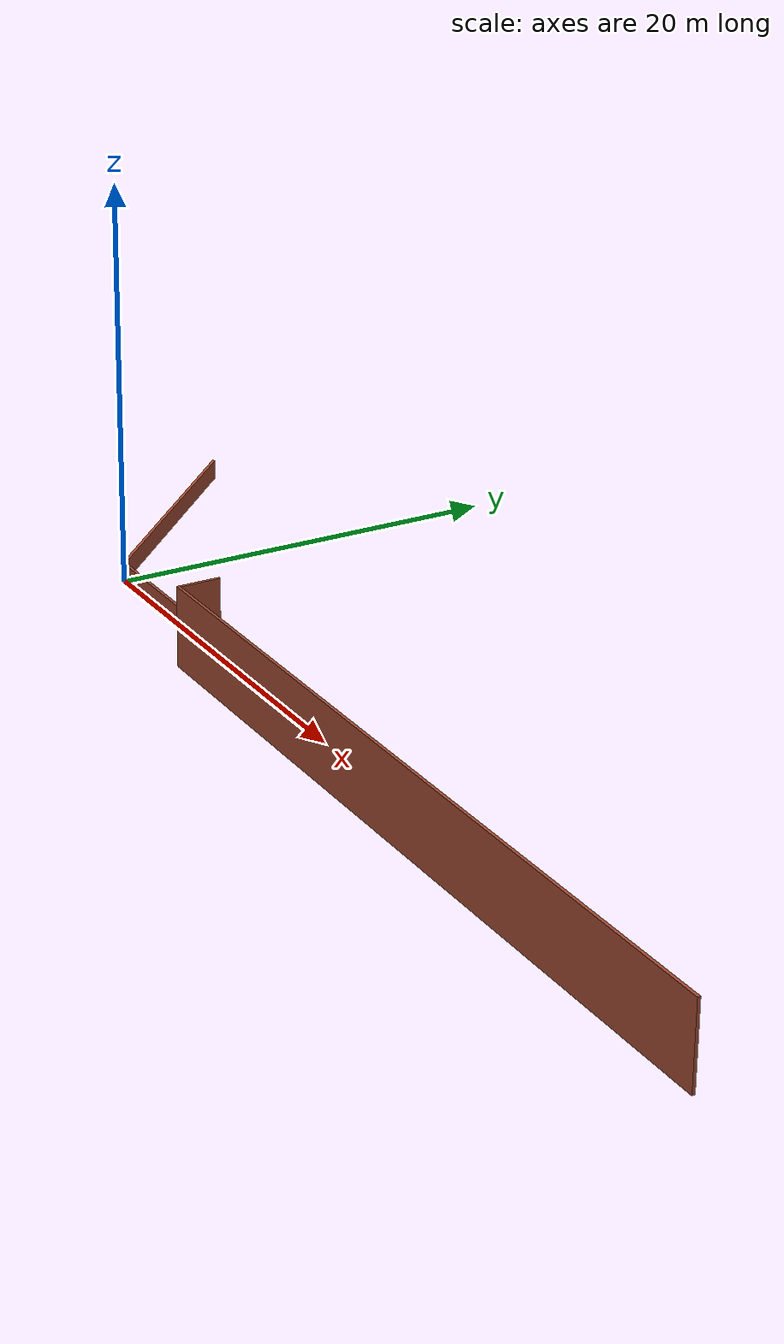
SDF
<?xml version='1.0'?>
<sdf version='1.6'>
  <model name='wall_others_2'>
    <pose frame=''>19.9845 4.01553 0 0 -0 0</pose>
    <link name='Wall_23'>
      <collision name='Wall_23_Collision'>
        <geometry>
          <box>
            <size>14.2921 0.15 1</size>
          </box>
        </geometry>
        <pose frame=''>0 0 0.5 0 -0 0</pose>
      </collision>
      <visual name='Wall_23_Visual'>
        <pose frame=''>0 0 0.5 0 -0 0</pose>
        <geometry>
          <box>
            <size>14.2921 0.15 1</size>
          </box>
        </geometry>
        <material>
          <script>
            <uri>file://media/materials/scripts/gazebo.material</uri>
            <name>Gazebo/Bricks</name>
          </script>
          <ambient>1 1 1 1</ambient>
        </material>
        <meta>
          <layer>0</layer>
        </meta>
      </visual>
      <pose frame=''>-24.9845 0.984467 0 0 -0 -0.785398</pose>
    </link>
    <link name='Wall_24'>
      <collision name='Wall_24_Collision'>
        <geometry>
          <box>
            <size>10.15 0.15 1</size>
          </box>
        </geometry>
        <pose frame=''>0 0 0.5 0 -0 0</pose>
      </collision>
      <visual name='Wall_24_Visual'>
        <pose frame=''>0 0 0.5 0 -0 0</pose>
        <geometry>
          <box>
            <size>10.15 0.15 1</size>
          </box>
        </geometry>
        <material>
          <script>
            <uri>file://media/materials/scripts/gazebo.material</uri>
            <name>Gazebo/Bricks</name>
          </script>
          <ambient>1 1 1 1</ambient>
        </material>
        <meta>
          <layer>0</layer>
        </meta>
      </visual>
      <pose frame=''>-14.9845 -4.01553 0 0 -0 0</pose>
    </link>
    <link name='Wall_26'>
      <collision name='Wall_26_Collision'>
        <geometry>
          <box>
            <size>2.15 0.15 4</size>
          </box>
        </geometry>
        <pose frame=''>0 0 2 0 -0 0</pose>
      </collision>
      <visual name='Wall_26_Visual'>
        <pose frame=''>0 0 2 0 -0 0</pose>
        <geometry>
          <box>
            <size>2.15 0.15 4</size>
          </box>
        </geometry>
        <material>
          <script>
            <uri>file://media/materials/scripts/gazebo.material</uri>
            <name>Gazebo/Bricks</name>
          </script>
          <ambient>1 1 1 1</ambient>
        </material>
        <meta>
          <layer>0</layer>
        </meta>
      </visual>
      <pose frame=''>-9.98447 -5.01553 0 0 -0 -1.5708</pose>
    </link>
    <link name='Wall_27'>
      <collision name='Wall_27_Collision'>
        <geometry>
          <box>
            <size>40.15 0.15 4</size>
          </box>
        </geometry>
        <pose frame=''>0 0 2 0 -0 0</pose>
      </collision>
      <visual name='Wall_27_Visual'>
        <pose frame=''>0 0 2 0 -0 0</pose>
        <geometry>
          <box>
            <size>40.15 0.15 4</size>
          </box>
        </geometry>
        <material>
          <script>
            <uri>file://media/materials/scripts/gazebo.material</uri>
            <name>Gazebo/Bricks</name>
          </script>
          <ambient>1 1 1 1</ambient>
        </material>
        <meta>
          <layer>0</layer>
        </meta>
      </visual>
      <pose frame=''>10.0155 -6.01553 0 0 -0 0</pose>
    </link>
    <static>1</static>
  </model>
</sdf>
